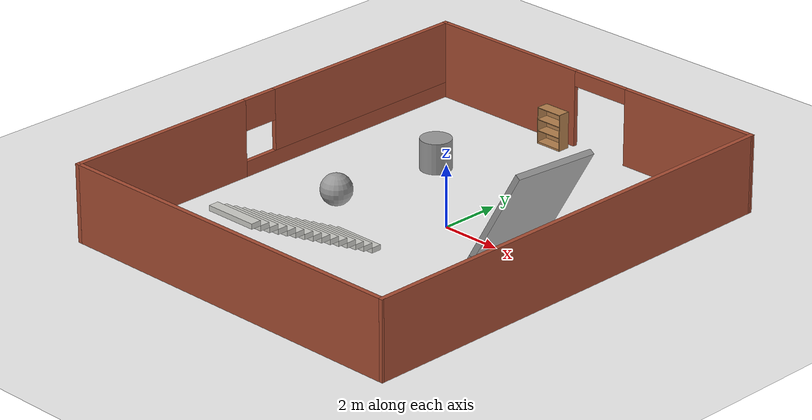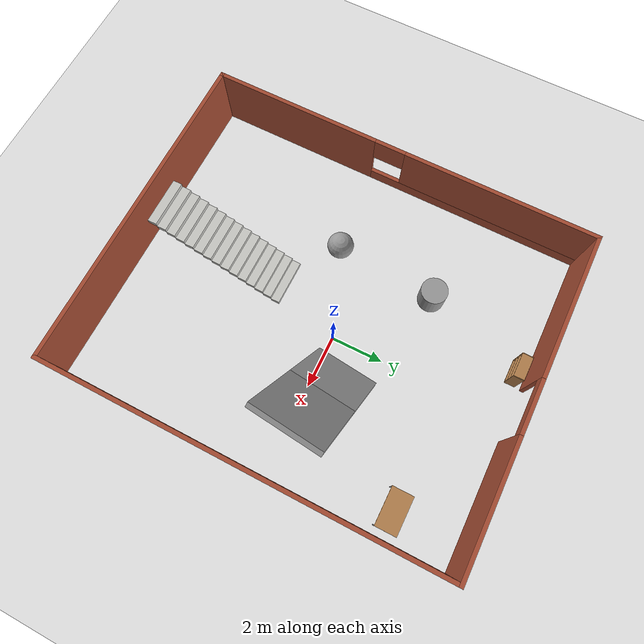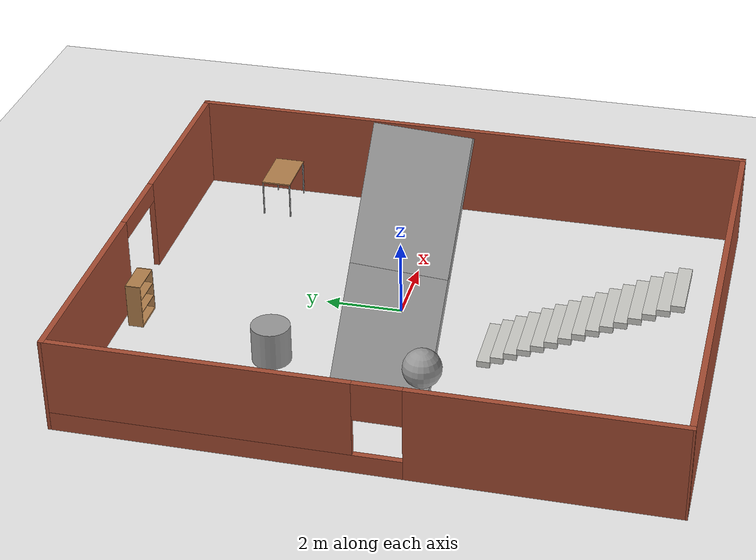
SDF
<sdf version="1.6">
 <world name="default">
  <light name="sun" type="directional">
   <pose>0 0 10 0 -0 0</pose>
   <diffuse>0.8 0.8 0.8 1</diffuse>
   <specular>0.2 0.2 0.2 1</specular>
   <attenuation>
    <range>1000</range>
    <constant>0.9</constant>
    <linear>0.01</linear>
    <quadratic>0.001</quadratic>
   </attenuation>
   <direction>0.5 0.1 -0.9</direction>
  </light>
  <scene><ambient>0.4 0.4 0.4 1</ambient><background>0.7 0.7 0.7 1</background><shadows>1</shadows></scene>
  <physics name="default_physics" default="0" type="ode">
   <max_step_size>0.01</max_step_size>
   <real_time_factor>1</real_time_factor>
   <real_time_update_rate>100</real_time_update_rate>
  </physics>
  <model name="ground_plane_0">
   <static>1</static>
   <link name="link">
    <collision name="collision">
     <geometry><plane><normal>0 0 1</normal><size>100 100</size></plane></geometry>
     <surface><friction><ode><mu>100</mu><mu2>50</mu2></ode></friction></surface>
    </collision>
    <visual name="visual">
     <cast_shadows>0</cast_shadows>
     <geometry><plane><normal>0 0 1</normal><size>100 100</size></plane></geometry>
     <material>
      <script><uri>file://media/materials/scripts/gazebo.material</uri><name>Gazebo/Grey</name></script>
     </material>
    </visual>
    <velocity_decay><linear>0</linear><angular>0</angular></velocity_decay>
   </link>
   <pose>0.497681 0 0 0 -0 0</pose>
  </model>
  <gravity>0 0 -9.8</gravity>
  <magnetic_field>6e-06 2.3e-05 -4.2e-05</magnetic_field>
  <atmosphere type="adiabatic"/>
  <spherical_coordinates>
   <surface_model>EARTH_WGS84</surface_model>
   <latitude_deg>0</latitude_deg>
   <longitude_deg>0</longitude_deg>
   <elevation>0</elevation>
   <heading_deg>0</heading_deg>
  </spherical_coordinates>
  <model name="table">
   <static>0</static>
   <link name="link">
    <collision name="surface">
     <pose>0 0 1 0 -0 0</pose>
     <geometry><box><size>1.5 0.8 0.03</size></box></geometry>
     <surface><friction><ode><mu>0.6</mu><mu2>0.6</mu2></ode></friction></surface>
    </collision>
    <visual name="visual1">
     <pose>0 0 1 0 -0 0</pose>
     <geometry><box><size>1.4 0.8 0.04</size></box></geometry>
     <material>
      <script><uri>file://media/materials/scripts/gazebo.material</uri><name>Gazebo/Wood</name></script>
     </material>
    </visual>
    <collision name="front_left_leg">
     <pose>0.68 0.38 0.5 0 -0 0</pose>
     <geometry><cylinder><radius>0.02</radius><length>1</length></cylinder></geometry>
    </collision>
    <visual name="front_left_leg">
     <pose>0.68 0.38 0.5 0 -0 0</pose>
     <geometry><cylinder><radius>0.02</radius><length>1</length></cylinder></geometry>
     <material>
      <script><uri>file://media/materials/scripts/gazebo.material</uri><name>Gazebo/Grey</name></script>
     </material>
    </visual>
    <collision name="front_right_leg">
     <pose>0.68 -0.38 0.5 0 -0 0</pose>
     <geometry><cylinder><radius>0.02</radius><length>1</length></cylinder></geometry>
    </collision>
    <visual name="front_right_leg">
     <pose>0.68 -0.38 0.5 0 -0 0</pose>
     <geometry><cylinder><radius>0.02</radius><length>1</length></cylinder></geometry>
     <material>
      <script><uri>file://media/materials/scripts/gazebo.material</uri><name>Gazebo/Grey</name></script>
     </material>
    </visual>
    <collision name="back_right_leg">
     <pose>-0.68 -0.38 0.5 0 -0 0</pose>
     <geometry><cylinder><radius>0.02</radius><length>1</length></cylinder></geometry>
    </collision>
    <visual name="back_right_leg">
     <pose>-0.68 -0.38 0.5 0 -0 0</pose>
     <geometry><cylinder><radius>0.02</radius><length>1</length></cylinder></geometry>
     <material>
      <script><uri>file://media/materials/scripts/gazebo.material</uri><name>Gazebo/Grey</name></script>
     </material>
    </visual>
    <collision name="back_left_leg">
     <pose>-0.68 0.38 0.5 0 -0 0</pose>
     <geometry><cylinder><radius>0.02</radius><length>1</length></cylinder></geometry>
    </collision>
    <visual name="back_left_leg">
     <pose>-0.68 0.38 0.5 0 -0 0</pose>
     <geometry><cylinder><radius>0.02</radius><length>1</length></cylinder></geometry>
     <material>
      <script><uri>file://media/materials/scripts/gazebo.material</uri><name>Gazebo/Grey</name></script>
     </material>
    </visual>
    <inertial>
     <inertia><ixx>1</ixx><ixy>0</ixy><ixz>0</ixz><iyy>1</iyy><iyz>0</iyz><izz>1</izz></inertia>
     <mass>1</mass>
    </inertial>
   </link>
   <pose>4.53609 4.49208 0.099675 -0.000201 0.000379 0</pose>
  </model>
  <model name="bookshelf">
   <static>1</static>
   <link name="link">
    <inertial><mass>1</mass></inertial>
    <collision name="back">
     <pose>0 0.005 0.6 0 -0 0</pose>
     <geometry><box><size>0.9 0.01 1.2</size></box></geometry>
    </collision>
    <visual name="visual1">
     <pose>0 0.005 0.6 0 -0 0</pose>
     <geometry><box><size>0.9 0.01 1.2</size></box></geometry>
     <material>
      <script><uri>file://media/materials/scripts/gazebo.material</uri><name>Gazebo/Wood</name></script>
     </material>
    </visual>
    <collision name="left_side">
     <pose>0.45 -0.195 0.6 0 -0 0</pose>
     <geometry><box><size>0.02 0.4 1.2</size></box></geometry>
    </collision>
    <visual name="visual2">
     <pose>0.45 -0.195 0.6 0 -0 0</pose>
     <geometry><box><size>0.02 0.4 1.2</size></box></geometry>
     <material>
      <script><uri>file://media/materials/scripts/gazebo.material</uri><name>Gazebo/Wood</name></script>
     </material>
    </visual>
    <collision name="right_side">
     <pose>-0.45 -0.195 0.6 0 -0 0</pose>
     <geometry><box><size>0.02 0.4 1.2</size></box></geometry>
    </collision>
    <visual name="visual3">
     <pose>-0.45 -0.195 0.6 0 -0 0</pose>
     <geometry><box><size>0.02 0.4 1.2</size></box></geometry>
     <material>
      <script><uri>file://media/materials/scripts/gazebo.material</uri><name>Gazebo/Wood</name></script>
     </material>
    </visual>
    <collision name="bottom">
     <pose>0 -0.195 0.03 0 -0 0</pose>
     <geometry><box><size>0.88 0.4 0.06</size></box></geometry>
    </collision>
    <visual name="visual4">
     <pose>0 -0.195 0.03 0 -0 0</pose>
     <geometry><box><size>0.88 0.4 0.06</size></box></geometry>
     <material>
      <script><uri>file://media/materials/scripts/gazebo.material</uri><name>Gazebo/Wood</name></script>
     </material>
    </visual>
    <collision name="top">
     <pose>0 -0.195 1.19 0 -0 0</pose>
     <geometry><box><size>0.88 0.4 0.02</size></box></geometry>
    </collision>
    <visual name="visual5">
     <pose>0 -0.195 1.19 0 -0 0</pose>
     <geometry><box><size>0.88 0.4 0.02</size></box></geometry>
     <material>
      <script><uri>file://media/materials/scripts/gazebo.material</uri><name>Gazebo/Wood</name></script>
     </material>
    </visual>
    <collision name="low_shelf">
     <pose>0 -0.195 0.43 0 -0 0</pose>
     <geometry><box><size>0.88 0.4 0.02</size></box></geometry>
    </collision>
    <visual name="visual6">
     <pose>0 -0.195 0.43 0 -0 0</pose>
     <geometry><box><size>0.88 0.4 0.02</size></box></geometry>
     <material>
      <script><uri>file://media/materials/scripts/gazebo.material</uri><name>Gazebo/Wood</name></script>
     </material>
    </visual>
    <collision name="high_shelf">
     <pose>0 -0.195 0.8 0 -0 0</pose>
     <geometry><box><size>0.88 0.4 0.02</size></box></geometry>
    </collision>
    <visual name="visual7">
     <pose>0 -0.195 0.8 0 -0 0</pose>
     <geometry><box><size>0.88 0.4 0.02</size></box></geometry>
     <material>
      <script><uri>file://media/materials/scripts/gazebo.material</uri><name>Gazebo/Wood</name></script>
     </material>
    </visual>
   </link>
   <pose>-1.78801 6.66854 0 0 -0 0</pose>
  </model>
  <model name="unit_sphere_0">
   <pose>-3.24819 -1.30918 0.6 0 -0 0</pose>
   <link name="link">
    <inertial>
     <mass>1</mass>
     <inertia><ixx>0.1</ixx><ixy>0</ixy><ixz>0</ixz><iyy>0.1</iyy><iyz>0</iyz><izz>0.1</izz></inertia>
    </inertial>
    <collision name="collision"><geometry><sphere><radius>0.5</radius></sphere></geometry></collision>
    <visual name="visual">
     <geometry><sphere><radius>0.5</radius></sphere></geometry>
     <material>
      <script><name>Gazebo/Grey</name><uri>file://media/materials/scripts/gazebo.material</uri></script>
     </material>
    </visual>
   </link>
  </model>
  <model name="unit_cylinder_0">
   <pose>-2.9857 2.60553 0.599769 0.000162 0.000418 0.000599</pose>
   <link name="link">
    <inertial>
     <mass>1</mass>
     <inertia><ixx>0.145833</ixx><ixy>0</ixy><ixz>0</ixz><iyy>0.145833</iyy><iyz>0</iyz><izz>0.125</izz></inertia>
    </inertial>
    <collision name="collision">
     <geometry><cylinder><radius>0.5</radius><length>1</length></cylinder></geometry>
    </collision>
    <visual name="visual">
     <geometry><cylinder><radius>0.5</radius><length>1</length></cylinder></geometry>
     <material>
      <script><name>Gazebo/Grey</name><uri>file://media/materials/scripts/gazebo.material</uri></script>
     </material>
    </visual>
   </link>
  </model>
  <model name="botenv1_0">
   <pose>-0.614757 -0.578065 0 0 -0 0</pose>
   <link name="Stairs_2">
    <visual name="Stairs_2_Visual_0">
     <pose>-0.549734 -2.00833 0.083333 0 -0 0</pose>
     <geometry><box><size>1.75 0.334 0.166667</size></box></geometry>
     <material>
      <script><uri>file://media/materials/scripts/gazebo.material</uri><name>Gazebo/CeilingTiled</name></script>
      <ambient>0.760784 0.662745 0.627451 1</ambient>
     </material>
    </visual>
    <collision name="Stairs_2_Collision_0">
     <geometry><box><size>1.75 0.334 0.166667</size></box></geometry>
     <pose>-0.549734 -2.00833 0.083333 0 -0 0</pose>
    </collision>
    <visual name="Stairs_2_Visual_1">
     <pose>-0.549734 -2.34233 0.25 0 -0 0</pose>
     <geometry><box><size>1.75 0.334 0.166667</size></box></geometry>
     <material>
      <script><uri>file://media/materials/scripts/gazebo.material</uri><name>Gazebo/CeilingTiled</name></script>
      <ambient>0.760784 0.662745 0.627451 1</ambient>
     </material>
    </visual>
    <collision name="Stairs_2_Collision_1">
     <geometry><box><size>1.75 0.334 0.166667</size></box></geometry>
     <pose>-0.549734 -2.34233 0.25 0 -0 0</pose>
    </collision>
    <visual name="Stairs_2_Visual_2">
     <pose>-0.549734 -2.67633 0.416667 0 -0 0</pose>
     <geometry><box><size>1.75 0.334 0.166667</size></box></geometry>
     <material>
      <script><uri>file://media/materials/scripts/gazebo.material</uri><name>Gazebo/CeilingTiled</name></script>
      <ambient>0.760784 0.662745 0.627451 1</ambient>
     </material>
    </visual>
    <collision name="Stairs_2_Collision_2">
     <geometry><box><size>1.75 0.334 0.166667</size></box></geometry>
     <pose>-0.549734 -2.67633 0.416667 0 -0 0</pose>
    </collision>
    <visual name="Stairs_2_Visual_3">
     <pose>-0.549734 -3.01033 0.583333 0 -0 0</pose>
     <geometry><box><size>1.75 0.334 0.166667</size></box></geometry>
     <material>
      <script><uri>file://media/materials/scripts/gazebo.material</uri><name>Gazebo/CeilingTiled</name></script>
      <ambient>0.760784 0.662745 0.627451 1</ambient>
     </material>
    </visual>
    <collision name="Stairs_2_Collision_3">
     <geometry><box><size>1.75 0.334 0.166667</size></box></geometry>
     <pose>-0.549734 -3.01033 0.583333 0 -0 0</pose>
    </collision>
    <visual name="Stairs_2_Visual_4">
     <pose>-0.549734 -3.34433 0.75 0 -0 0</pose>
     <geometry><box><size>1.75 0.334 0.166667</size></box></geometry>
     <material>
      <script><uri>file://media/materials/scripts/gazebo.material</uri><name>Gazebo/CeilingTiled</name></script>
      <ambient>0.760784 0.662745 0.627451 1</ambient>
     </material>
    </visual>
    <collision name="Stairs_2_Collision_4">
     <geometry><box><size>1.75 0.334 0.166667</size></box></geometry>
     <pose>-0.549734 -3.34433 0.75 0 -0 0</pose>
    </collision>
    <visual name="Stairs_2_Visual_5">
     <pose>-0.549734 -3.67833 0.916667 0 -0 0</pose>
     <geometry><box><size>1.75 0.334 0.166667</size></box></geometry>
     <material>
      <script><uri>file://media/materials/scripts/gazebo.material</uri><name>Gazebo/CeilingTiled</name></script>
      <ambient>0.760784 0.662745 0.627451 1</ambient>
     </material>
    </visual>
    <collision name="Stairs_2_Collision_5">
     <geometry><box><size>1.75 0.334 0.166667</size></box></geometry>
     <pose>-0.549734 -3.67833 0.916667 0 -0 0</pose>
    </collision>
    <visual name="Stairs_2_Visual_6">
     <pose>-0.549734 -4.01233 1.08333 0 -0 0</pose>
     <geometry><box><size>1.75 0.334 0.166667</size></box></geometry>
     <material>
      <script><uri>file://media/materials/scripts/gazebo.material</uri><name>Gazebo/CeilingTiled</name></script>
      <ambient>0.760784 0.662745 0.627451 1</ambient>
     </material>
    </visual>
    <collision name="Stairs_2_Collision_6">
     <geometry><box><size>1.75 0.334 0.166667</size></box></geometry>
     <pose>-0.549734 -4.01233 1.08333 0 -0 0</pose>
    </collision>
    <visual name="Stairs_2_Visual_7">
     <pose>-0.549734 -4.34633 1.25 0 -0 0</pose>
     <geometry><box><size>1.75 0.334 0.166667</size></box></geometry>
     <material>
      <script><uri>file://media/materials/scripts/gazebo.material</uri><name>Gazebo/CeilingTiled</name></script>
      <ambient>0.760784 0.662745 0.627451 1</ambient>
     </material>
    </visual>
    <collision name="Stairs_2_Collision_7">
     <geometry><box><size>1.75 0.334 0.166667</size></box></geometry>
     <pose>-0.549734 -4.34633 1.25 0 -0 0</pose>
    </collision>
    <visual name="Stairs_2_Visual_8">
     <pose>-0.549734 -4.68033 1.41667 0 -0 0</pose>
     <geometry><box><size>1.75 0.334 0.166667</size></box></geometry>
     <material>
      <script><uri>file://media/materials/scripts/gazebo.material</uri><name>Gazebo/CeilingTiled</name></script>
      <ambient>0.760784 0.662745 0.627451 1</ambient>
     </material>
    </visual>
    <collision name="Stairs_2_Collision_8">
     <geometry><box><size>1.75 0.334 0.166667</size></box></geometry>
     <pose>-0.549734 -4.68033 1.41667 0 -0 0</pose>
    </collision>
    <visual name="Stairs_2_Visual_9">
     <pose>-0.549734 -5.01433 1.58333 0 -0 0</pose>
     <geometry><box><size>1.75 0.334 0.166667</size></box></geometry>
     <material>
      <script><uri>file://media/materials/scripts/gazebo.material</uri><name>Gazebo/CeilingTiled</name></script>
      <ambient>0.760784 0.662745 0.627451 1</ambient>
     </material>
    </visual>
    <collision name="Stairs_2_Collision_9">
     <geometry><box><size>1.75 0.334 0.166667</size></box></geometry>
     <pose>-0.549734 -5.01433 1.58333 0 -0 0</pose>
    </collision>
    <visual name="Stairs_2_Visual_10">
     <pose>-0.549734 -5.34833 1.75 0 -0 0</pose>
     <geometry><box><size>1.75 0.334 0.166667</size></box></geometry>
     <material>
      <script><uri>file://media/materials/scripts/gazebo.material</uri><name>Gazebo/CeilingTiled</name></script>
      <ambient>0.760784 0.662745 0.627451 1</ambient>
     </material>
    </visual>
    <collision name="Stairs_2_Collision_10">
     <geometry><box><size>1.75 0.334 0.166667</size></box></geometry>
     <pose>-0.549734 -5.34833 1.75 0 -0 0</pose>
    </collision>
    <visual name="Stairs_2_Visual_11">
     <pose>-0.549734 -5.68233 1.91667 0 -0 0</pose>
     <geometry><box><size>1.75 0.334 0.166667</size></box></geometry>
     <material>
      <script><uri>file://media/materials/scripts/gazebo.material</uri><name>Gazebo/CeilingTiled</name></script>
      <ambient>0.760784 0.662745 0.627451 1</ambient>
     </material>
    </visual>
    <collision name="Stairs_2_Collision_11">
     <geometry><box><size>1.75 0.334 0.166667</size></box></geometry>
     <pose>-0.549734 -5.68233 1.91667 0 -0 0</pose>
    </collision>
    <visual name="Stairs_2_Visual_12">
     <pose>-0.549734 -6.01633 2.08333 0 -0 0</pose>
     <geometry><box><size>1.75 0.334 0.166667</size></box></geometry>
     <material>
      <script><uri>file://media/materials/scripts/gazebo.material</uri><name>Gazebo/CeilingTiled</name></script>
      <ambient>0.760784 0.662745 0.627451 1</ambient>
     </material>
    </visual>
    <collision name="Stairs_2_Collision_12">
     <geometry><box><size>1.75 0.334 0.166667</size></box></geometry>
     <pose>-0.549734 -6.01633 2.08333 0 -0 0</pose>
    </collision>
    <visual name="Stairs_2_Visual_13">
     <pose>-0.549734 -6.35033 2.25 0 -0 0</pose>
     <geometry><box><size>1.75 0.334 0.166667</size></box></geometry>
     <material>
      <script><uri>file://media/materials/scripts/gazebo.material</uri><name>Gazebo/CeilingTiled</name></script>
      <ambient>0.760784 0.662745 0.627451 1</ambient>
     </material>
    </visual>
    <collision name="Stairs_2_Collision_13">
     <geometry><box><size>1.75 0.334 0.166667</size></box></geometry>
     <pose>-0.549734 -6.35033 2.25 0 -0 0</pose>
    </collision>
    <visual name="Stairs_2_Visual_14">
     <pose>-0.549734 -6.68433 2.41667 0 -0 0</pose>
     <geometry><box><size>1.75 0.334 0.166667</size></box></geometry>
     <material>
      <script><uri>file://media/materials/scripts/gazebo.material</uri><name>Gazebo/CeilingTiled</name></script>
      <ambient>0.760784 0.662745 0.627451 1</ambient>
     </material>
    </visual>
    <collision name="Stairs_2_Collision_14">
     <geometry><box><size>1.75 0.334 0.166667</size></box></geometry>
     <pose>-0.549734 -6.68433 2.41667 0 -0 0</pose>
    </collision>
   </link>
   <link name="Wall_11">
    <pose>0 7.53397 0 0 0 -3.13611</pose>
    <visual name="Wall_11_Visual_0">
     <pose>-3.80989 0 1.25 0 -0 0</pose>
     <geometry><box><size>4.9244 0.15 2.5</size></box></geometry>
     <material>
      <script><uri>file://media/materials/scripts/gazebo.material</uri><name>Gazebo/Bricks</name></script>
      <ambient>1 1 1 1</ambient>
     </material>
    </visual>
    <collision name="Wall_11_Collision_0">
     <geometry><box><size>4.9244 0.15 2.5</size></box></geometry>
     <pose>-3.80989 0 1.25 0 -0 0</pose>
    </collision>
    <visual name="Wall_11_Visual_1">
     <pose>3.47078 0 1.25 0 -0 0</pose>
     <geometry><box><size>5.60263 0.15 2.5</size></box></geometry>
     <material>
      <script><uri>file://media/materials/scripts/gazebo.material</uri><name>Gazebo/Bricks</name></script>
      <ambient>1 1 1 1</ambient>
     </material>
    </visual>
    <collision name="Wall_11_Collision_1">
     <geometry><box><size>5.60263 0.15 2.5</size></box></geometry>
     <pose>3.47078 0 1.25 0 -0 0</pose>
    </collision>
    <visual name="Wall_11_Visual_2">
     <pose>-0.339116 0 2.25 0 -0 0</pose>
     <geometry><box><size>2.01715 0.15 0.5</size></box></geometry>
     <material>
      <script><uri>file://media/materials/scripts/gazebo.material</uri><name>Gazebo/Bricks</name></script>
      <ambient>1 1 1 1</ambient>
     </material>
    </visual>
    <collision name="Wall_11_Collision_2">
     <geometry><box><size>2.01715 0.15 0.5</size></box></geometry>
     <pose>-0.339116 0 2.25 0 -0 0</pose>
    </collision>
   </link>
   <link name="Wall_15">
    <collision name="Wall_15_Collision">
     <geometry><box><size>15.2861 0.15 2.5</size></box></geometry>
     <pose>0 0 1.25 0 -0 0</pose>
    </collision>
    <visual name="Wall_15_Visual">
     <pose>0 0 1.25 0 -0 0</pose>
     <geometry><box><size>15.2861 0.15 2.5</size></box></geometry>
     <material>
      <script><uri>file://media/materials/scripts/gazebo.material</uri><name>Gazebo/Bricks</name></script>
      <ambient>1 1 1 1</ambient>
     </material>
    </visual>
    <pose>6.189 -3.1e-05 0 0 -0 1.56974</pose>
   </link>
   <link name="Wall_5">
    <collision name="Wall_5_Collision">
     <geometry><box><size>12.5 0.15 2.5</size></box></geometry>
     <pose>0 0 1.25 0 -0 0</pose>
    </collision>
    <visual name="Wall_5_Visual">
     <pose>0 0 1.25 0 -0 0</pose>
     <geometry><box><size>12.5 0.15 2.5</size></box></geometry>
     <material>
      <script><uri>file://media/materials/scripts/gazebo.material</uri><name>Gazebo/Bricks</name></script>
      <ambient>1 1 1 1</ambient>
     </material>
    </visual>
    <pose>0.006 -7.56803 0 0 -0 0</pose>
   </link>
   <link name="Wall_8">
    <pose>-6.183 -0.034031 0 0 -0 1.57265</pose>
    <visual name="Wall_8_Visual_0">
     <pose>-4.338 0 1.25 0 -0 0</pose>
     <geometry><box><size>6.54244 0.15 2.5</size></box></geometry>
     <material>
      <script><uri>file://media/materials/scripts/gazebo.material</uri><name>Gazebo/Bricks</name></script>
      <ambient>1 1 1 1</ambient>
     </material>
    </visual>
    <collision name="Wall_8_Collision_0">
     <geometry><box><size>6.54244 0.15 2.5</size></box></geometry>
     <pose>-4.338 0 1.25 0 -0 0</pose>
    </collision>
    <visual name="Wall_8_Visual_1">
     <pose>3.27122 0 0.25 0 -0 0</pose>
     <geometry><box><size>8.676 0.15 0.5</size></box></geometry>
     <material>
      <script><uri>file://media/materials/scripts/gazebo.material</uri><name>Gazebo/Bricks</name></script>
      <ambient>1 1 1 1</ambient>
     </material>
    </visual>
    <collision name="Wall_8_Collision_1">
     <geometry><box><size>8.676 0.15 0.5</size></box></geometry>
     <pose>3.27122 0 0.25 0 -0 0</pose>
    </collision>
    <visual name="Wall_8_Visual_2">
     <pose>3.86872 0 1.5 0 -0 0</pose>
     <geometry><box><size>7.481 0.15 2</size></box></geometry>
     <material>
      <script><uri>file://media/materials/scripts/gazebo.material</uri><name>Gazebo/Bricks</name></script>
      <ambient>1 1 1 1</ambient>
     </material>
    </visual>
    <collision name="Wall_8_Collision_2">
     <geometry><box><size>7.481 0.15 2</size></box></geometry>
     <pose>3.86872 0 1.5 0 -0 0</pose>
    </collision>
    <visual name="Wall_8_Visual_3">
     <pose>-0.469281 0 2 0 -0 0</pose>
     <geometry><box><size>1.195 0.15 1</size></box></geometry>
     <material>
      <script><uri>file://media/materials/scripts/gazebo.material</uri><name>Gazebo/Bricks</name></script>
      <ambient>1 1 1 1</ambient>
     </material>
    </visual>
    <collision name="Wall_8_Collision_3">
     <geometry><box><size>1.195 0.15 1</size></box></geometry>
     <pose>-0.469281 0 2 0 -0 0</pose>
    </collision>
   </link>
   <static>1</static>
  </model>
  <model name="grey_wall_0">
   <static>1</static>
   <link name="link">
    <pose>0 0 1.4 0 -0 0</pose>
    <collision name="collision"><geometry><box><size>7.5 0.2 2.8</size></box></geometry></collision>
    <visual name="visual">
     <cast_shadows>0</cast_shadows>
     <geometry><box><size>7.5 0.2 2.8</size></box></geometry>
     <material>
      <script>
       <uri>model://grey_wall/materials/scripts</uri>
       <uri>model://grey_wall/materials/textures</uri>
       <name>vrc/grey_wall</name>
      </script>
     </material>
    </visual>
   </link>
   <pose>1.89019 -0.878469 0 -1.567 -1.01828 -0.105864</pose>
  </model>
 </world>
</sdf>
